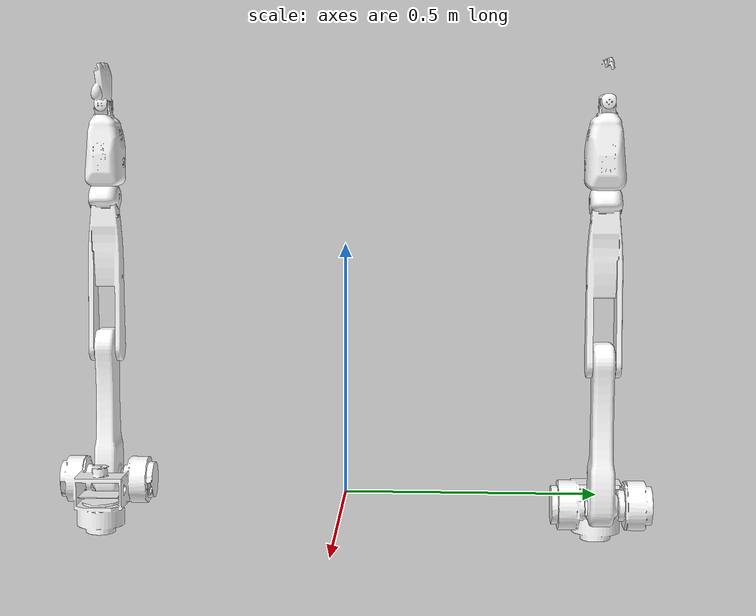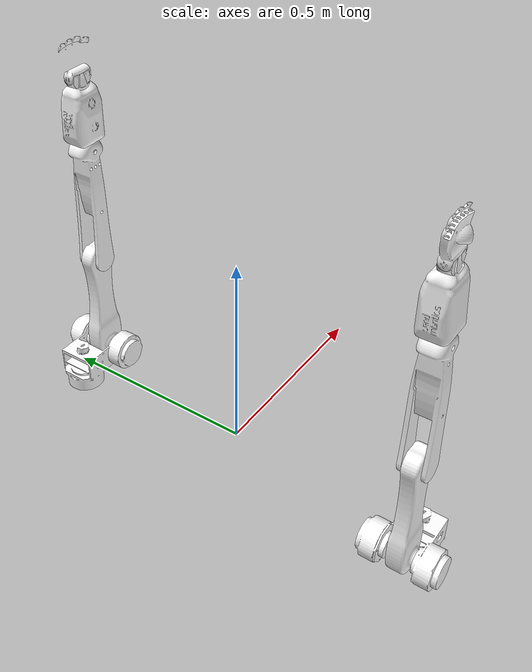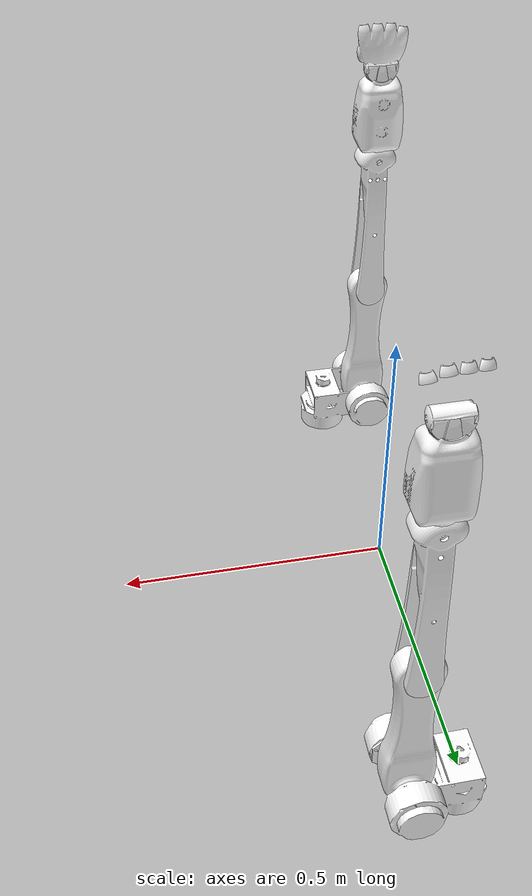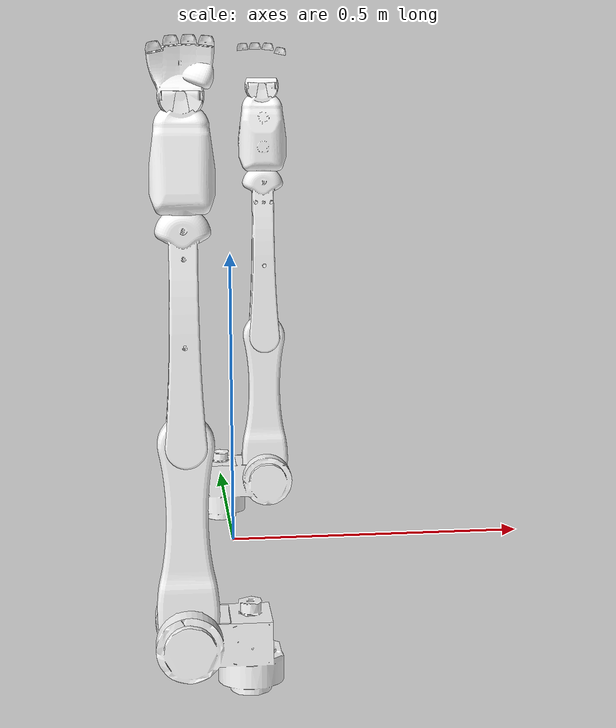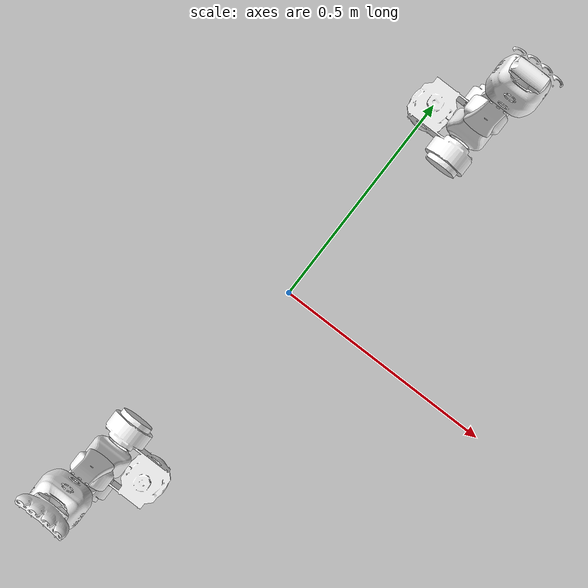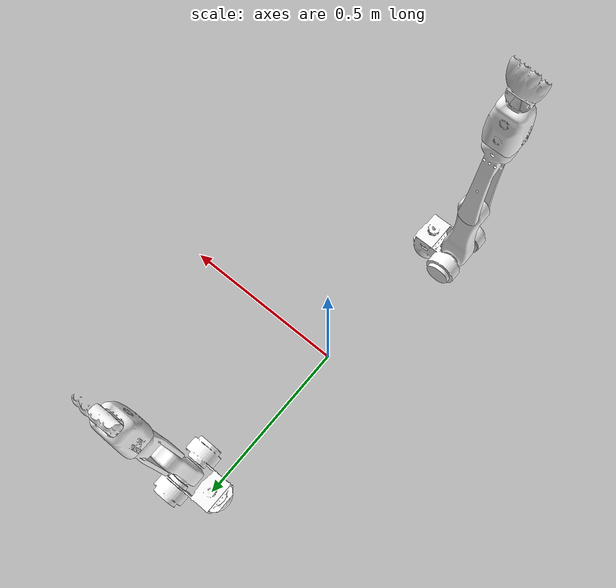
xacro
<?xml version="1.0" ?>
<robot name="moonbot01" xmlns:xacro="http://ros.org/wiki/xacro">

  <!-- include files -->
  <xacro:include filename="$(find moonbot_description)/urdf/yonaka_0722/materials.xacro"/>
  <xacro:include filename="$(find moonbot_description)/urdf/yonaka_0722/moonbot01_arm_macro.xacro"/>

  <link name="world"/>

  <joint name="world_to_left_base" type="fixed">
    <origin xyz="0 0.5 0" rpy="0 0 0"/>
    <parent link="world"/>
    <child link="left_arm_base_link"/>
  </joint>

  <xacro:moonbot01_arm prefix="left_"/>

  <joint name="world_to_right_base" type="fixed">
    <origin xyz="0 -0.5 0" rpy="0 0 3.1416"/>
    <parent link="world"/>
    <child link="right_arm_base_link"/>
  </joint>

  <xacro:moonbot01_arm prefix="right_"/>

</robot>

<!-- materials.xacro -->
<robot name="moonbot01" xmlns:xacro="http://ros.org/wiki/xacro">

  <!-- link rviz colors -->
  <material name="White">
    <color rgba="1 1 1 1"/>
  </material>

  <material name="Black">
    <color rgba="0 0 0 1"/>
  </material>

</robot>

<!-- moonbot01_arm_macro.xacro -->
<robot name="moonbot01" xmlns:xacro="http://ros.org/wiki/xacro">

  <xacro:macro name="moonbot01_arm" params="prefix">

    <!-- include files -->
    <xacro:include filename="$(find moonbot_description)/urdf/yonaka_0722/constant.xacro" />
    <xacro:include filename="$(find moonbot_description)/urdf/yonaka_0722/common.xacro" />

    <!-- base link -->
    <link name="${prefix}arm_base_link">
      <inertial>
        <mass value="0.001"/>
        <inertia ixx="0.000000" ixy="0.000000" ixz="0.000000" iyy="0.000000" iyz="0.000000" izz="0.000000"/>
      </inertial>
    </link>

    <!-- joint 1 -->
    <joint name="${prefix}arm_joint1" type="revolute">
      <axis xyz="0 0 1" rpy="0 0 0"/>
      <xacro:if value="${prefix == 'right_'}">
        <limit effort="1000.0" lower="${-aj1_upper_limit}" upper="${-aj1_lower_limit}" velocity="${-aj1_velocity_limit}"/>
      </xacro:if>
      <xacro:if value="${prefix == 'left_'}">
        <limit effort="1000.0" lower="${aj1_lower_limit}" upper="${aj1_upper_limit}" velocity="${aj1_velocity_limit}"/>
      </xacro:if>
      <origin xyz="0 0.0 0.0" rpy="0 0 0"/>
      <parent link="${prefix}arm_base_link"/>
      <child link="${prefix}arm_link1"/>
    </joint>

    <!-- link 1 -->
    <xacro:link name="${prefix}arm_link1" material="White" mesh="M_Assy_arm1.STL" mass="3.550" ixx="0.1" ixy="0.1" ixz="0.1" iyy="0.1" iyz="0.1" izz="0.1"/>

    <!-- joint 2 -->
    <joint name="${prefix}arm_joint2" type="revolute">
      <axis xyz="0 1 0" rpy="0 0 0"/>
      <limit effort="1000.0" lower="${aj2_lower_limit}" upper="${aj2_upper_limit}" velocity="${aj2_velocity_limit}"/>
      <origin xyz="0.09 0.0 -0.0" rpy="0 0 0"/>
      <parent link="${prefix}arm_link1"/>
      <child link="${prefix}arm_link2"/>
    </joint>

    <!-- link 2 -->
    <xacro:link name="${prefix}arm_link2" material="White" mesh="M_Assy_arm2.STL" mass="0.990" ixx="0.1" ixy="0.1" ixz="0.1" iyy="0.1" iyz="0.1" izz="0.1"/>

    <!-- joint 3 -->
    <joint name="${prefix}arm_joint3" type="revolute">
      <axis xyz="0 1 0" rpy="0 0 0"/>
      <limit effort="1000.0" lower="${aj3_lower_limit}" upper="${aj3_upper_limit}" velocity="${aj3_velocity_limit}"/>
      <origin xyz="0.0 0.0 0.28" rpy="0 0 0"/>
      <parent link="${prefix}arm_link2"/>
      <child link="${prefix}arm_link3"/>
    </joint>

    <!-- link 3 -->
    <xacro:link name="${prefix}arm_link3" material="White" mesh="M_Assy_arm3.STL" mass="0.43" ixx="0.1" ixy="0.1" ixz="0.1" iyy="0.1" iyz="0.1" izz="0.1"/>

    <!-- joint 4 -->
    <joint name="${prefix}arm_joint4" type="revolute">
      <axis xyz="0 0 1" rpy="0 0 0"/>
      <limit effort="1000.0" lower="${aj4_lower_limit}" upper="${aj4_upper_limit}" velocity="${aj4_velocity_limit}"/>
      <origin xyz="0.0 0.0 0.33" rpy="0 0 0"/>
      <parent link="${prefix}arm_link3"/>
      <child link="${prefix}arm_link4"/>
    </joint>

    <!-- link 4 -->
    <xacro:if value="${prefix == 'left_'}">
      <xacro:link name="${prefix}arm_link4" material="White" mesh="HAND_L1.STL" mass="0.6" ixx="0.1" ixy="0.1" ixz="0.1" iyy="0.1" iyz="0.1" izz="0.1"/>
    </xacro:if>
    <xacro:if value="${prefix == 'right_'}">
      <xacro:link name="${prefix}arm_link4" material="White" mesh="HAND_R1.STL" mass="0.6" ixx="0.1" ixy="0.1" ixz="0.1" iyy="0.1" iyz="0.1" izz="0.1"/>
    </xacro:if>

    <!-- joint 5 -->
    <joint name="${prefix}arm_joint5" type="revolute">
      <axis xyz="0 1 0" rpy="0 0 0"/>
      <limit effort="1000.0" lower="${aj5_lower_limit}" upper="${aj5_upper_limit}" velocity="${aj5_velocity_limit}"/>
      <origin xyz="0.0 0.0 0.165" rpy="0 0 0"/>
      <parent link="${prefix}arm_link4"/>
      <child link="${prefix}arm_link5"/>
    </joint>

    <!-- link 5 -->
    <xacro:if value="${prefix == 'left_'}">
      <xacro:link name="${prefix}arm_link5" material="White" mesh="HAND_L2.STL" mass="0.08" ixx="0.1" ixy="0.1" ixz="0.1" iyy="0.1" iyz="0.1" izz="0.1" xyz='0 0 -0.165'/>
    </xacro:if>
    <xacro:if value="${prefix == 'right_'}">
      <xacro:link name="${prefix}arm_link5" material="White" mesh="HAND_R2.STL" mass="0.08" ixx="0.1" ixy="0.1" ixz="0.1" iyy="0.1" iyz="0.1" izz="0.1" xyz='0 0 -0.165'/>
    </xacro:if>

    <!-- joint 6 -->
    <joint name="${prefix}arm_joint6" type="revolute">
      <axis xyz="1 0 0" rpy="0 0 0"/>
      <limit effort="1000.0" lower="${aj6_lower_limit}" upper="${aj6_upper_limit}" velocity="${aj6_velocity_limit}"/>
      <origin xyz="0.0 0.0 0.0" rpy="0 0 0"/>
      <parent link="${prefix}arm_link5"/>
      <child link="${prefix}arm_link6"/>
    </joint>

    <!-- link 6 -->
    <xacro:if value="${prefix == 'left_'}">
      <xacro:link name="${prefix}arm_link6" material="White" mesh="HAND_L3.STL" mass="0.08" ixx="0.1" ixy="0.1" ixz="0.1" iyy="0.1" iyz="0.1" izz="0.1" xyz='0 0 -0.165'/>
    </xacro:if>
    <xacro:if value="${prefix == 'right_'}">
      <xacro:link name="${prefix}arm_link6" material="White" mesh="HAND_R3.STL" mass="0.08" ixx="0.1" ixy="0.1" ixz="0.1" iyy="0.1" iyz="0.1" izz="0.1" xyz='0 0 -0.165'/>
    </xacro:if>

    <!-- finger link -->

    <!-- finger joint -->

  </xacro:macro>

</robot>

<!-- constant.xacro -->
<robot xmlns:xacro="http://www.ros.org/wiki/xacro">

    <!-- Constants for robot dimensions -->
    <xacro:property name="PI" value="3.1415926535897931"/>

    <!-- Arm -->
    <xacro:property name="aj1_lower_limit" value="${radians( -15)}"/>
    <xacro:property name="aj1_upper_limit" value="${radians( 180)}"/>
    <xacro:property name="aj2_lower_limit" value="${radians(-150)}"/>
    <xacro:property name="aj2_upper_limit" value="${radians( 150)}"/>
    <xacro:property name="aj3_lower_limit" value="${radians(-150)}"/>
    <xacro:property name="aj3_upper_limit" value="${radians( 150)}"/>
    <xacro:property name="aj4_lower_limit" value="${radians(-360)}"/>
    <xacro:property name="aj4_upper_limit" value="${radians( 360)}"/>
    <xacro:property name="aj5_lower_limit" value="${radians(-30)}"/>
    <xacro:property name="aj5_upper_limit" value="${radians( 30)}"/>
    <xacro:property name="aj6_lower_limit" value="${radians(-90)}"/>
    <xacro:property name="aj6_upper_limit" value="${radians( 90)}"/>

    <xacro:property name="aj1_velocity_limit" value="${radians(30)}"/>
    <xacro:property name="aj2_velocity_limit" value="${radians(30)}"/>
    <xacro:property name="aj3_velocity_limit" value="${radians(30)}"/>
    <xacro:property name="aj4_velocity_limit" value="${radians(30)}"/>
    <xacro:property name="aj5_velocity_limit" value="${radians(30)}"/>
    <xacro:property name="aj6_velocity_limit" value="${radians(30)}"/>

    <xacro:property name="atorque_min" value="-1000.0"/>
    <xacro:property name="atorque_max" value="1000.0"/>

    <xacro:property name="aj1_init_pose" value="${PI}"/>
    <xacro:property name="aj2_init_pose" value="1.047"/>
    <xacro:property name="aj3_init_pose" value="-2.356"/>
    <xacro:property name="aj4_init_pose" value="${PI}"/>
    <xacro:property name="aj5_init_pose" value="0.0"/>
    <xacro:property name="aj6_init_pose" value="0.0"/>

    <!-- Leg -->
    <xacro:property name="j1_lower_limit" value="${radians( -90)}"/>
    <xacro:property name="j1_upper_limit" value="${radians(  90)}"/>
    <xacro:property name="j2_lower_limit" value="${radians(-150)}"/>
    <xacro:property name="j2_upper_limit" value="${radians(  10)}"/>
    <xacro:property name="j3_lower_limit" value="${radians(-160)}"/>
    <xacro:property name="j3_upper_limit" value="${radians( 120)}"/>

    <xacro:property name="j1_velocity_limit" value="${radians(180)}"/>
    <xacro:property name="j2_velocity_limit" value="${radians(180)}"/>
    <xacro:property name="j3_velocity_limit" value="${radians(180)}"/>

    <xacro:property name="torque_min" value="-10000.0"/>
    <xacro:property name="torque_max" value="10000.0"/>

    <xacro:property name="j1_init_pose" value="0.0"/>
    <xacro:property name="j2_init_pose" value="-0.96"/>
    <xacro:property name="j3_init_pose" value="1.017"/>

    <!-- foot -->

</robot>

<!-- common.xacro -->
<robot name="moonbot01" xmlns:xacro="http://ros.org/wiki/xacro">

  <xacro:macro name="link" params="name material mesh mass ixx ixy ixz iyy iyz izz xyz:='0 0 0' rpy:='0 0 0'">
    <link name="${name}">
      <visual>
        <origin xyz="${xyz}" rpy="${rpy}"/>
        <material name="${material}"/>
        <geometry>
          <mesh filename="package://moonbot_description/meshesY/${mesh}" scale="0.001 0.001 0.001"/>
        </geometry>
      </visual>
      <collision>
        <origin xyz="${xyz}" rpy="${rpy}"/>
        <geometry>
          <mesh filename="package://moonbot_description/meshesY/${mesh}" scale="0.001 0.001 0.001"/>
        </geometry>
      </collision>
      <inertial>
        <origin xyz="${xyz}" rpy="${rpy}"/>
        <mass value="${mass}"/>
        <inertia ixx="${ixx}" ixy="${ixy}" ixz="${ixz}" iyy="${iyy}" iyz="${iyz}" izz="${izz}"/>
      </inertial>
    </link>
  </xacro:macro>

</robot>
